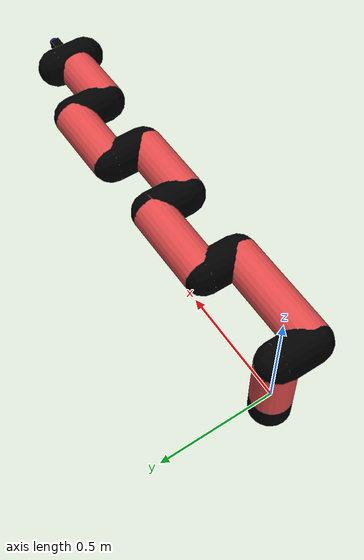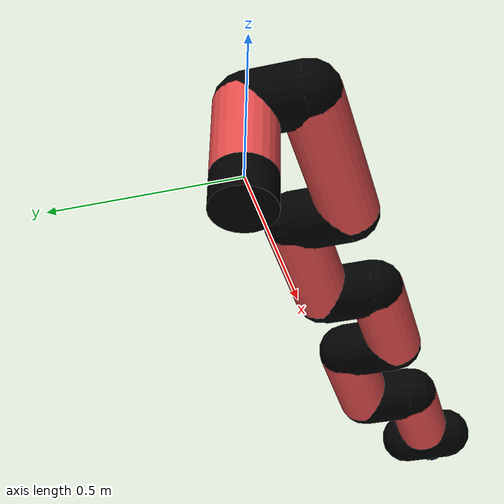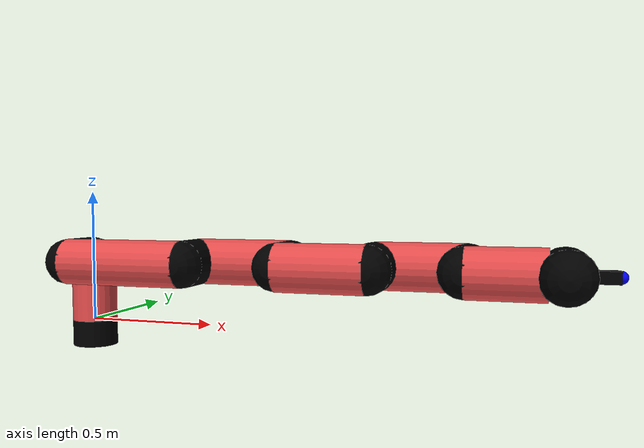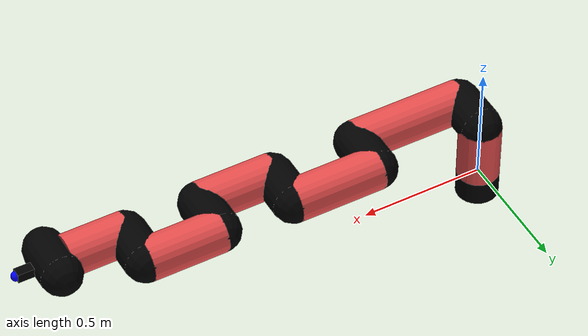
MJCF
<mujoco model="manipulator">
		<compiler angle="degree" coordinate="local" inertiafromgeom="auto" meshdir="meshes/"/>
		<option gravity="0 0 0" integrator="RK4" iterations="30" timestep="0.01"/>

		<default>
		<joint armature="1" limited="true" stiffness="10" damping="15" frictionloss="5.0"/>
		<geom conaffinity="1" condim="3" contype="1" friction=".5 .1 .1" margin="0.002"/>
		<motor ctrllimited="true"/>
		<position ctrllimited="true"/>
		</default>

		<asset>
		<texture builtin="gradient" height="100" rgb1="1.0 1.0 1.0" rgb2="1.0 1.0 1.0" type="skybox" width="100"/>
		<texture builtin="flat" height="32" name="arm_tex" rgb1="0.9 0.3 0.3" type="2d" width="32"/>
		<texture builtin="flat" height="32" name="gripper_tex" rgb1="0.0 0.0 0.0" type="cube" width="32"/>

		<material name="arm_mat" shininess="0.1" specular="0.1" texture="arm_tex"/>
		<material name="gripper_mat" shininess="1" specular="1" texture="gripper_tex"/>
		</asset>

		<worldbody>
		<light cutoff="45" diffuse=".8 .8 .8" dir="0 0.16 -1" directional="false" name="light" pos="0 -2.0 8.0" specular="0.3 0.3 0.3"/>

		<body name="base_link" pos="0 0 -0.1">
		<geom fromto="0 0 0 0 0 0.1" material="arm_mat" name="base_link" rgba="0.0 0.0 0.0 1" size="0.085" type="cylinder"/>
		</body>

		<body name="l1" pos="0 0 0">
<geom fromto="0 0 0 0 0 0.24" material="arm_mat" name="l1" rgba="0.9 0.3 0.3 1" size="0.085" type="cylinder"/>
<geom fromto="0 0 0.24 0 -0.16 0.24" material="arm_mat" name="l1_ex" rgba="0.0 0.0 0.0 1" size="0.085" type="capsule"/>
<joint axis="0 0 1" name="j1" pos="0 0 0" range="-90 90" damping="28.25" frictionloss="11.07"/>

<body name="l2" pos="0 -0.16 0.24">
<geom fromto="0 0 0 0.46 0 0" material="arm_mat" name="l2" rgba="0.9 0.3 0.3 1" size="0.085" type="cylinder"/>
<geom fromto="0.46 0 0 0.46 0.16 0" material="arm_mat" name="l2_ex" rgba="0.0 0.0 0.0 1" size="0.085" type="capsule"/>
<joint axis="0.0 1.0 0.0" name="j2" pos="0 0 0" range="-90 60" damping="36.09" frictionloss="7.84"/>

<body name="l3" pos="0.46 0.16 0">
<geom fromto="0 0 0 0.36 0 0" material="arm_mat" name="l3" rgba="0.9 0.3 0.3 1" size="0.085" type="cylinder"/>
<geom fromto="0.36 0 0 0.36 -0.16 0" material="arm_mat" name="l3_ex" rgba="0.0 0.0 0.0 1" size="0.085" type="capsule"/>
<joint axis="0.0 1.0 0.0" name="j3" pos="0 0 0" range="-30 60" damping="29.53" frictionloss="9.83"/>

<body name="l4" pos="0.36 -0.16 0">
<geom fromto="0 0 0 0.31 0 0" material="arm_mat" name="l4" rgba="0.9 0.3 0.3 1" size="0.085" type="cylinder"/>
<geom fromto="0.31 0 0 0.31 0.16 0" material="arm_mat" name="l4_ex" rgba="0.0 0.0 0.0 1" size="0.085" type="capsule"/>
<joint axis="0.0 1.0 0.0" name="j4" pos="0 0 0" range="-30 60" damping="33.42" frictionloss="11.69"/>

<body name="l5" pos="0.31 0.16 0">
<geom fromto="0 0 0 0.31 0 0" material="arm_mat" name="l5" rgba="0.9 0.3 0.3 1" size="0.085" type="cylinder"/>
<geom fromto="0.31 0 0 0.31 -0.16 0" material="arm_mat" name="l5_ex" rgba="0.0 0.0 0.0 1" size="0.085" type="capsule"/>
<joint axis="0.0 1.0 0.0" name="j5" pos="0 0 0" range="-30 60" damping="34.74" frictionloss="11.96"/>

<body name="l6" pos="0.31 -0.16 0">
<geom fromto="0 0 0 0.25 0 0" material="arm_mat" name="l6" rgba="0.9 0.3 0.3 1" size="0.085" type="cylinder"/>
<joint axis="0.0 1.0 0.0" name="j6" pos="0 0 0" range="-30 60" damping="36.09" frictionloss="9.41"/>

<body name="gripper" pos="0.25 0 0">
<geom fromto="0.05 -0.07 0 0.05 0.07 0" material="gripper_mat" name="gripper" rgba="0.0 0.0 0.0 1" size="0.085" type="capsule"/><joint axis="1 0 0" name="j7" pos="0 0 0" range="-90 90" damping="15" frictionloss="5.0"/><body name="finger" pos="0.1 0 0">
<geom fromto="0 0.0 0 0.1 0.0 0" material="gripper_mat" name="finger" rgba="0.0 0.0 0.0 1" size="0.020 0.06 0.06" type="box"/>
</body>
<site name="current" pos="0.2 0. 0.0" rgba="0. 0. 1.0 1" size="0.02" type="sphere"/>
</body>
</body>
</body>
</body>
</body>
</body>
</body>
</worldbody>
<actuator>
<motor ctrllimited="true" ctrlrange="-1.0 1.0" joint="j1" gear="80.0"/>
<motor ctrllimited="true" ctrlrange="-1.0 1.0" joint="j2" gear="70.73"/>
<motor ctrllimited="true" ctrlrange="-1.0 1.0" joint="j3" gear="63.2"/>
<motor ctrllimited="true" ctrlrange="-1.0 1.0" joint="j4" gear="64.54"/>
<motor ctrllimited="true" ctrlrange="-1.0 1.0" joint="j5" gear="63.73"/>
<motor ctrllimited="true" ctrlrange="-1.0 1.0" joint="j6" gear="76.95"/>
<motor ctrllimited="true" ctrlrange="-1.0 1.0" joint="j7" gear="80"/>
</actuator>
</mujoco>
